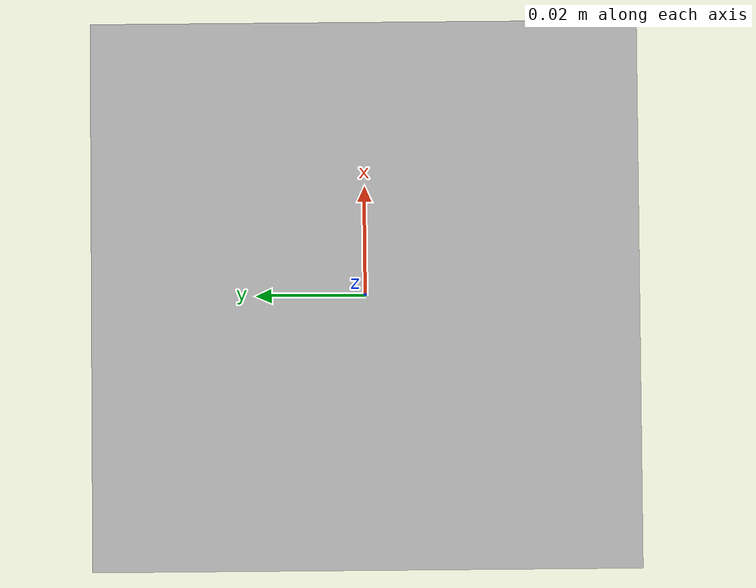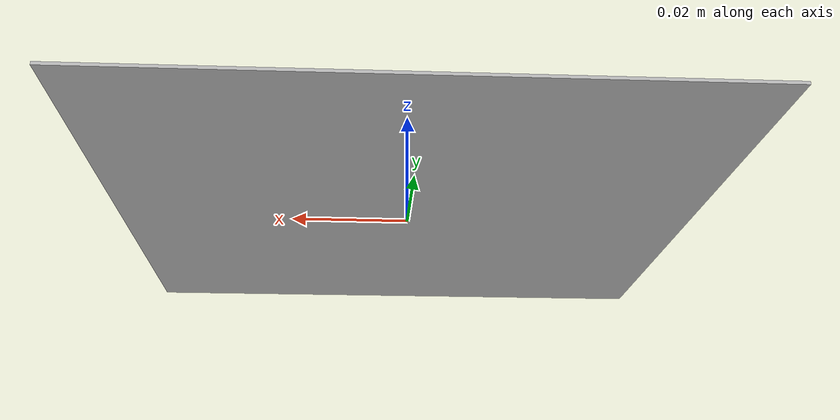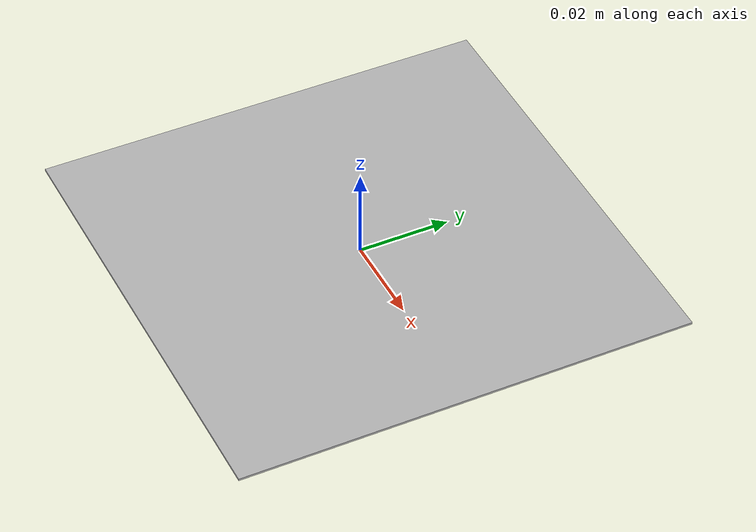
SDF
<?xml version="1.0" ?>
<sdf version="1.4">
  <model name="GoStraight_arrow">
    <static>true</static>
    <link name="GoStraight_link">
      <pose>0 0 0.0012 0 0 0</pose>
      <visual name="visual">
        <cast_shadows>0</cast_shadows>
        <geometry>
          <mesh>
            <uri>model://GoStraight_arrow/GoStraight_arrow.DAE</uri>
          </mesh>
        </geometry>
      </visual>
    </link>
  </model>
</sdf>
